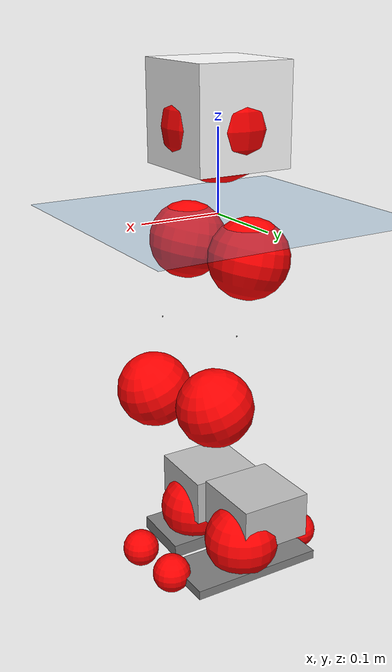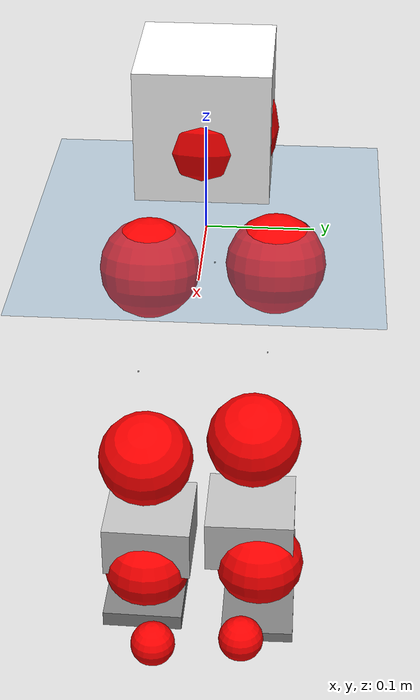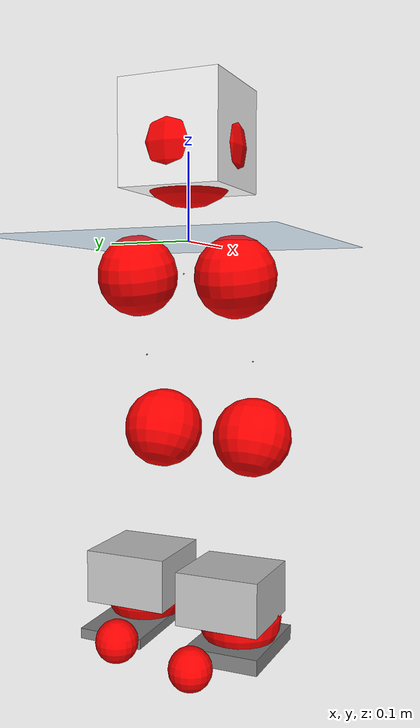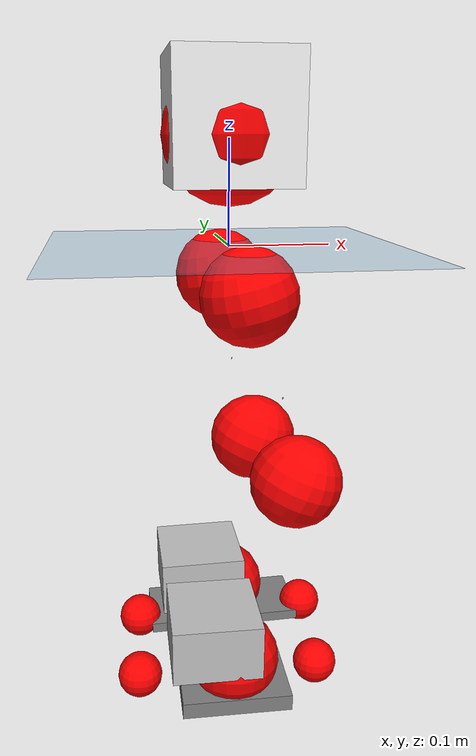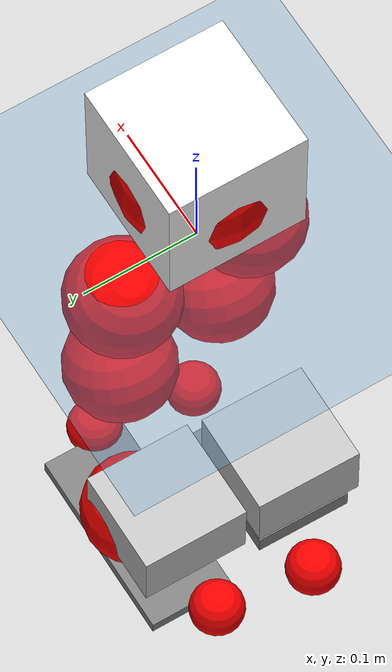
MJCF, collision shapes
<mujoco model="pi_12dof_release_v1">
  <compiler angle="radian" assetdir="assets" balanceinertia="true" inertiafromgeom="false"/>

  <option timestep="0.005" density="1.2" viscosity="2e-05"/>

  <size nkey="1"/>

  <visual>
    <quality shadowsize="8192"/>
    <map shadowclip="0.5"/>
  </visual>

  <default>
    <default class="/">
      <joint armature="0.01" damping="0.01" frictionloss="0.01"/>
      <geom contype="0" conaffinity="0" group="1" solref="-1000 -80"/>
      <site size="0.01 0.005 0.005" group="5"/>
      <general forcelimited="true" biastype="affine" gainprm="20" biasprm="0 -20 -0.5"/>
      <default class="foot">
        <geom size="0.0845 0.036 0.005" type="box" condim="6" group="4" priority="1" friction="0.9 0.2 0.2" solimp="0.015 1 0.005"/>
      </default>
      <default class="reward_collision_sphere">
        <geom group="5" rgba="1 0 0 1"/>
      </default>
    </default>
  </default>

  <asset>
    <texture type="skybox" colorspace="auto" name="//unnamed_texture_0" builtin="gradient" rgb1="0.95 0.95 0.95" rgb2="0.95 0.95 0.95" width="100" height="600"/>
    <texture type="2d" colorspace="auto" name="texplane" builtin="checker" rgb1="0.345 0.575 0.748" rgb2="0.345 0.575 0.748" markrgb="1 1 1" width="512" height="512"/>
    <material name="MatPlane" class="/" texture="texplane" texuniform="true" texrepeat="2 2" specular="0.9"/>
    <mesh name="baselink_1" class="/" file="baselink_1.STL"/>
    <mesh name="r_hip_pitch_link" class="/" file="r_hip_pitch_link.STL"/>
    <mesh name="r_hip_roll_link" class="/" file="r_hip_roll_link.STL"/>
    <mesh name="r_thigh_link" class="/" file="r_thigh_link.STL"/>
    <mesh name="r_calf_link" class="/" file="r_calf_link.STL"/>
    <mesh name="r_ankle_pitch_link" class="/" file="r_ankle_pitch_link.STL"/>
    <mesh name="r_ankle_roll_link" class="/" file="r_ankle_roll_link.STL"/>
    <mesh name="l_hip_pitch_link" class="/" file="l_hip_pitch_link.STL"/>
    <mesh name="l_hip_roll_link" class="/" file="l_hip_roll_link.STL"/>
    <mesh name="l_thigh_link" class="/" file="l_thigh_link.STL"/>
    <mesh name="l_calf_link" class="/" file="l_calf_link.STL"/>
    <mesh name="l_ankle_pitch_link" class="/" file="l_ankle_pitch_link.STL"/>
    <mesh name="l_ankle_roll_link" class="/" file="l_ankle_roll_link.STL"/>
  </asset>

  <worldbody>
    <geom name="floor" class="/" size="100 100 0.125" type="plane" group="0" material="MatPlane"/>
    <light name="toplight_shadow" class="/" pos="0 0 5" dir="0.0990148 0.0990148 -0.990148" type="directional" ambient="0.04 0.04 0.04" diffuse="0.55 0.55 0.55" specular="0.12 0.12 0.12"/>
    <light name="toplight_fill" class="/" pos="0 0 5" dir="0.0990148 0.0990148 -0.990148" type="directional" castshadow="false" ambient="0.04 0.04 0.04" diffuse="0.3 0.3 0.3" specular="0.08 0.08 0.08"/>
    <body name="trunk" pos="0.000729278 -3.31198e-05 0.00998792" quat="1 -4.77379e-05 7.70118e-05 -5.28812e-05">
      <inertial pos="0.00244042 -0.0138676 0.0422247" quat="0.695324 0.00967389 0.00933113 0.71857" mass="3.73801" diaginertia="0.0544313 0.00312471 0.0182995"/>
      <joint name="//unnamed_joint_0" type="free"/>
      <geom name="//unnamed_geom_1" class="/" type="mesh" density="0" rgba="1 1 1 1" mesh="baselink_1"/>
      <geom name="//unnamed_geom_2" class="/" size="0.0591973 0.0591973 0.0591973" pos="0 0 0.105644" type="box" rgba="1 1 1 1"/>
      <geom name="//unnamed_geom_3" class="reward_collision_sphere" size="0.065117" pos="0 0 0.0924386"/>
      <site name="imu" class="/" pos="-0.0271531 0.0398296 -0.0290231" size="0.0118395"/>
      <camera name="track" class="/" pos="0 -1.59604 0" quat="0.707107 0.707107 0 0" mode="trackcom"/>
      <camera name="ego_camera" class="/" pos="0.107495 0 0.237699" quat="-0.5 -0.5 0.5 0.5"/>
      <body name="r_hip_pitch_link" pos="0.00399573 -0.00968242 -0.0453574" quat="0.992106 -0.000426102 -0.125386 -0.00194906">
        <inertial pos="0.0134789 -0.0439343 0.0073126" quat="-0.0225227 0.69892 -0.0222648 0.714498" mass="0.684727" diaginertia="0.000697947 3.6849e-05 0.00031684"/>
        <joint name="r_hip_pitch_joint" class="/" pos="0 0 0" axis="0.000120517 -0.99765 0.0685094" range="-1.68904 1.44051" armature="0.0167277" damping="0.0465457" frictionloss="0.0180855"/>
        <geom name="//unnamed_geom_4" class="/" type="mesh" density="0" rgba="0.75294 0.75294 0.75294 1" mesh="r_hip_pitch_link"/>
        <geom name="//unnamed_geom_5" class="/" size="0.000591973 0.000591973 0.000591973" type="box" rgba="0.75294 0.75294 0.75294 1"/>
        <body name="r_hip_roll_link" pos="0.00496269 -0.0431219 -0.00677087" quat="1 0.000105474 3.98851e-05 0.000102534">
          <inertial pos="-0.00110027 -0.000725534 -0.0724848" quat="0.704499 -0.0785369 -0.0837597 0.700356" mass="0.708443" diaginertia="0.00194485 8.99522e-05 0.000705722"/>
          <joint name="r_hip_roll_joint" class="/" pos="0 0 0" axis="-0.998603 -0.0453967 0.0270542" stiffness="0.0316478" range="-0.120285 0.52274" armature="0.0133394" damping="0.0814248" frictionloss="0.0069885"/>
          <geom name="//unnamed_geom_6" class="/" type="mesh" density="0" rgba="0.75294 0.75294 0.75294 1" mesh="r_hip_roll_link"/>
          <geom name="//unnamed_geom_7" class="/" size="0.000591973 0.000591973 0.000591973" type="box" rgba="0.75294 0.75294 0.75294 1"/>
          <geom name="//unnamed_geom_8" class="reward_collision_sphere" size="0.0473578"/>
          <body name="r_thigh_link" pos="0.00663746 -0.0097787 -0.102253" quat="0.999978 0.00218273 0.00387866 -0.00493267">
            <inertial pos="0.00110493 0.000825945 -0.0642065" quat="0.739157 0.673529 -0.00235174 0.00078129" mass="0.226447" diaginertia="0.000740016 3.16069e-05 0.000259498"/>
            <joint name="r_thigh_joint" class="/" pos="0 0 0" axis="-0.0123439 -0.000683509 -0.999924" range="-0.283562 0.790405" armature="0.00490171" damping="0" frictionloss="0.0120365"/>
            <geom name="//unnamed_geom_9" class="/" type="mesh" density="0" rgba="0.75294 0.75294 0.75294 1" mesh="r_thigh_link"/>
            <geom name="//unnamed_geom_10" class="/" size="0.000591973 0.000591973 0.000591973" type="box" rgba="0.75294 0.75294 0.75294 1"/>
            <body name="r_calf_link" pos="-0.00535478 0.00630231 -0.0936598" quat="0.947083 -0.00530296 0.320943 -0.00130183">
              <inertial pos="-0.00141131 -0.00332903 -0.089288" quat="0.999993 -0.00349415 0.00115152 0.000940177" mass="1.47058" diaginertia="0.0250214 0.00143319 0.000681906"/>
              <joint name="r_calf_joint" class="/" pos="0 0 0" axis="0.0293457 -0.997121 0.0699245" range="-1.51883 0.668673" armature="0.0130797" damping="0.0108038" frictionloss="0.0145583"/>
              <geom name="//unnamed_geom_11" class="/" type="mesh" density="0" rgba="0.75294 0.75294 0.75294 1" mesh="r_calf_link"/>
              <geom name="//unnamed_geom_12" class="/" size="0.000591973 0.000591973 0.000591973" type="box" rgba="0.75294 0.75294 0.75294 1"/>
              <geom name="//unnamed_geom_13" class="reward_collision_sphere" size="0.0473578"/>
              <body name="r_ankle_pitch_link" pos="-0.014649 -0.00809973 -0.183136" quat="0.979798 0.00103318 -0.199979 -0.00161465">
                <inertial pos="0.00662574 0.005053 -0.000466496" quat="0.00574767 0.706382 -0.00463277 0.707793" mass="0.259158" diaginertia="0.00176395 6.31424e-05 0.000375408"/>
                <joint name="r_ankle_pitch_joint" class="/" pos="0 0 0" axis="0.0222204 -0.999367 0.0277745" stiffness="0.032309" range="-1.11574 0.369452" armature="0.0108803" damping="0" frictionloss="0.00478393"/>
                <geom name="//unnamed_geom_14" class="/" type="mesh" density="0" rgba="0.75294 0.75294 0.75294 1" mesh="r_ankle_pitch_link"/>
                <geom name="//unnamed_geom_15" class="/" size="0.0461739 0.0473578 0.0295986" type="box" rgba="0.75294 0.75294 0.75294 1"/>
                <body name="r_ankle_roll_link" pos="0.0942757 -0.00122912 -0.00775769" quat="0.999999 0.000581699 0.00121614 0.000813167">
                  <inertial pos="-0.0281925 0.00393819 -0.0335403" quat="0.55733 0.414397 0.431923 0.575414" mass="1.03975" diaginertia="0.00619228 0.000337896 0.00115097"/>
                  <joint name="r_ankle_roll_joint" class="/" pos="0 0 0" axis="-0.999997 0.00194747 0.00114596" range="-0.192052 0.209448" armature="0.0119939" damping="0.00118845" frictionloss="0.00304534"/>
                  <geom name="//unnamed_geom_16" class="/" type="mesh" density="0" rgba="0.75294 0.75294 0.75294 1" mesh="r_ankle_roll_link"/>
                  <geom name="//unnamed_geom_17" class="/" type="mesh" rgba="0.75294 0.75294 0.75294 1" mesh="r_ankle_roll_link"/>
                  <geom name="right_foot" class="foot" size="0.0571417 0.0425323 0.00870148" pos="-0.0730966 0 -0.0581043"/>
                  <geom name="//unnamed_geom_19" class="reward_collision_sphere" size="0.0473578" pos="-0.0716633 0 -0.026411"/>
                  <geom name="//unnamed_geom_20" class="reward_collision_sphere" size="0.0236789" pos="0.021499 0.0159604 -0.0528221"/>
                  <geom name="//unnamed_geom_21" class="reward_collision_sphere" size="0.0236789" pos="-0.171992 0.0159604 -0.0528221"/>
                  <site name="right_foot" class="foot" pos="-0.0730966 0 -0.0581043" size="0.0118395"/>
                </body>
              </body>
            </body>
          </body>
        </body>
      </body>
      <body name="l_hip_pitch_link" pos="0.00357432 0.00834542 -0.0464124" quat="0.992179 0.000847408 -0.12482 0.000422514">
        <inertial pos="0.00854393 0.0553121 -0.00315315" quat="0.00808364 0.685811 -0.0273758 0.72722" mass="0.770427" diaginertia="0.000723175 3.00328e-05 0.00043758"/>
        <joint name="l_hip_pitch_joint" class="/" pos="0 0 0" axis="0.00336271 0.999982 -0.00506588" range="-1.46771 2.01368" armature="0.00631323" damping="0" frictionloss="0.018765"/>
        <geom name="//unnamed_geom_22" class="/" type="mesh" density="0" rgba="0.75294 0.75294 0.75294 1" mesh="l_hip_pitch_link"/>
        <geom name="//unnamed_geom_23" class="/" size="0.000591973 0.000591973 0.000591973" type="box" rgba="0.75294 0.75294 0.75294 1"/>
        <body name="l_hip_roll_link" pos="-0.00411639 0.0573956 -0.000464597" quat="0.999993 0.00220708 0.0018478 0.00258552">
          <inertial pos="0.00239925 0.0100402 -0.0832241" quat="0.695377 -0.102703 -0.0667471 0.70813" mass="0.612721" diaginertia="0.00173995 8.22939e-05 0.000390619"/>
          <joint name="l_hip_roll_joint" class="/" pos="0 0 0" axis="-0.999416 -0.010988 0.0323625" stiffness="0.0230457" range="-0.802848 0.38468" armature="0.00889074" damping="0" frictionloss="0.0108856"/>
          <geom name="//unnamed_geom_24" class="/" type="mesh" density="0" rgba="0.75294 0.75294 0.75294 1" mesh="l_hip_roll_link"/>
          <geom name="//unnamed_geom_25" class="/" size="0.000591973 0.000591973 0.000591973" type="box" rgba="0.75294 0.75294 0.75294 1"/>
          <geom name="//unnamed_geom_26" class="reward_collision_sphere" size="0.0473578"/>
          <body name="l_thigh_link" pos="-0.0108395 -0.00562334 -0.0931179" quat="0.999983 -0.00269859 -0.0050329 -0.000820977">
            <inertial pos="-0.010859 0.00436995 -0.053222" quat="0.674786 0.738011 -0.00163886 0.000997201" mass="0.173646" diaginertia="0.000644398 2.05833e-05 0.000149993"/>
            <joint name="l_thigh_joint" class="/" pos="0 0 0" axis="0.0116597 0.0175347 -0.999778" range="-0.690118 0.533558" armature="0.0160832" damping="0" frictionloss="0.0177752"/>
            <geom name="//unnamed_geom_27" class="/" type="mesh" density="0" rgba="0.75294 0.75294 0.75294 1" mesh="l_thigh_link"/>
            <geom name="//unnamed_geom_28" class="/" size="0.000591973 0.000591973 0.000591973" type="box" rgba="0.75294 0.75294 0.75294 1"/>
            <body name="l_calf_link" pos="-0.000924104 -0.0110073 -0.092883" quat="0.947864 0.00503374 0.318618 -0.00342369">
              <inertial pos="-0.00323398 -0.00421598 -0.0853559" quat="0.997154 -0.0577432 -0.0268075 0.0403766" mass="1.58913" diaginertia="0.0211318 0.00137912 0.000772048"/>
              <joint name="l_calf_joint" class="/" pos="0 0 0" axis="0.00220764 0.999997 0.00138519" range="-0.725847 1.79566" armature="0.0117489" damping="0" frictionloss="0.017201"/>
              <geom name="//unnamed_geom_29" class="/" type="mesh" density="0" rgba="0.75294 0.75294 0.75294 1" mesh="l_calf_link"/>
              <geom name="//unnamed_geom_30" class="/" size="0.000591973 0.000591973 0.000591973" type="box" rgba="0.75294 0.75294 0.75294 1"/>
              <geom name="//unnamed_geom_31" class="reward_collision_sphere" size="0.0473578"/>
              <body name="l_ankle_pitch_link" pos="0.00237611 -0.00506806 -0.170952" quat="0.980071 -0.000318423 -0.198643 0.00089864">
                <inertial pos="0.00777787 -0.0160337 -0.00819783" quat="0.0214124 0.739836 -0.0117801 0.672343" mass="0.343381" diaginertia="0.00224044 8.54883e-05 0.000584504"/>
                <joint name="l_ankle_pitch_joint" class="/" pos="0 0 0" axis="0.0427117 0.997707 0.0525101" range="-0.545656 1.32226" armature="0.0119305" damping="0.0586261" frictionloss="0.0140865"/>
                <geom name="//unnamed_geom_32" class="/" type="mesh" density="0" rgba="0.75294 0.75294 0.75294 1" mesh="l_ankle_pitch_link"/>
                <geom name="//unnamed_geom_33" class="/" size="0.0461739 0.0473578 0.0295986" type="box" rgba="0.75294 0.75294 0.75294 1"/>
                <body name="l_ankle_roll_link" pos="0.0996994 0.0109886 -0.00407152" quat="0.999987 0.00439377 -0.00217904 0.00156654">
                  <inertial pos="-0.0415082 -0.000366253 -0.0199937" quat="0.531001 0.484598 0.451635 0.52842" mass="1.09284" diaginertia="0.00718469 0.000386938 0.00100331"/>
                  <joint name="l_ankle_roll_joint" class="/" pos="0 0 0" axis="-0.997079 -0.00240088 0.0763395" stiffness="0.0277673" range="-0.182596 0.466447" armature="0.0129201" damping="0" frictionloss="0.0208134"/>
                  <geom name="//unnamed_geom_34" class="/" type="mesh" density="0" rgba="0.75294 0.75294 0.75294 1" mesh="l_ankle_roll_link"/>
                  <geom name="//unnamed_geom_35" class="/" type="mesh" rgba="0.75294 0.75294 0.75294 1" mesh="l_ankle_roll_link"/>
                  <geom name="left_foot" class="foot" size="0.0859066 0.037552 0.00570535" pos="-0.0730966 0 -0.0581043"/>
                  <geom name="//unnamed_geom_37" class="reward_collision_sphere" size="0.0473578" pos="-0.0716633 0 -0.026411"/>
                  <geom name="//unnamed_geom_38" class="reward_collision_sphere" size="0.0236789" pos="0.021499 -0.0159604 -0.0528221"/>
                  <geom name="//unnamed_geom_39" class="reward_collision_sphere" size="0.0236789" pos="-0.171992 -0.0159604 -0.0528221"/>
                  <site name="left_foot" class="foot" pos="-0.0730966 0 -0.0581043" size="0.0118395"/>
                </body>
              </body>
            </body>
          </body>
        </body>
      </body>
    </body>
  </worldbody>

  <contact>
    <pair class="/" geom1="floor" geom2="right_foot" name="//unnamed_contact_1"/>
    <pair class="/" geom1="floor" geom2="left_foot" name="//unnamed_contact_0"/>
  </contact>

  <actuator>
    <general name="r_hip_pitch_joint" class="/" joint="r_hip_pitch_joint" forcerange="-34.2555 34.2555" gainprm="27.4127" biasprm="0 -27.4127 -0.54978"/>
    <general name="r_hip_roll_joint" class="/" joint="r_hip_roll_joint" forcerange="-25.846 25.846" gainprm="27.4127" biasprm="0 -27.4127 -0.54978"/>
    <general name="r_thigh_joint" class="/" joint="r_thigh_joint" forcerange="-33.0716 33.0716" gainprm="27.4127" biasprm="0 -27.4127 -0.54978"/>
    <general name="r_calf_joint" class="/" joint="r_calf_joint" forcerange="-19.8507 19.8507" gainprm="27.4127" biasprm="0 -27.4127 -0.54978"/>
    <general name="r_ankle_pitch_joint" class="/" joint="r_ankle_pitch_joint" forcerange="-16.3681 16.3681" gainprm="27.4127" biasprm="0 -27.4127 -0.54978"/>
    <general name="r_ankle_roll_joint" class="/" joint="r_ankle_roll_joint" forcerange="-12.7507 12.7507" gainprm="27.4127" biasprm="0 -27.4127 -0.54978"/>
    <general name="l_hip_pitch_joint" class="/" joint="l_hip_pitch_joint" forcerange="-32.4148 32.4148" gainprm="27.4127" biasprm="0 -27.4127 -0.54978"/>
    <general name="l_hip_roll_joint" class="/" joint="l_hip_roll_joint" forcerange="-38.9 38.9" gainprm="27.4127" biasprm="0 -27.4127 -0.54978"/>
    <general name="l_thigh_joint" class="/" joint="l_thigh_joint" forcerange="-20.9835 20.9835" gainprm="27.4127" biasprm="0 -27.4127 -0.54978"/>
    <general name="l_calf_joint" class="/" joint="l_calf_joint" forcerange="-29.3661 29.3661" gainprm="27.4127" biasprm="0 -27.4127 -0.54978"/>
    <general name="l_ankle_pitch_joint" class="/" joint="l_ankle_pitch_joint" forcerange="-19.7291 19.7291" gainprm="27.4127" biasprm="0 -27.4127 -0.54978"/>
    <general name="l_ankle_roll_joint" class="/" joint="l_ankle_roll_joint" forcerange="-31.3236 31.3236" gainprm="27.4127" biasprm="0 -27.4127 -0.54978"/>
  </actuator>

  <sensor>
    <gyro site="imu" name="imu_angular_velocity"/>
    <velocimeter site="imu" name="imu_linear_velocity"/>
    <framelinvel objtype="site" objname="left_foot" name="left_foot_global_linear_velocity"/>
    <framelinvel objtype="site" objname="right_foot" name="right_foot_global_linear_velocity"/>
  </sensor>

  <keyframe>
    <key name="home" qpos="0 0 0.291 1 0 0 0 0.4 0 0 -0.8 0.4 0 -0.4 0 0 0.8 -0.4 0"/>
  </keyframe>
</mujoco>
